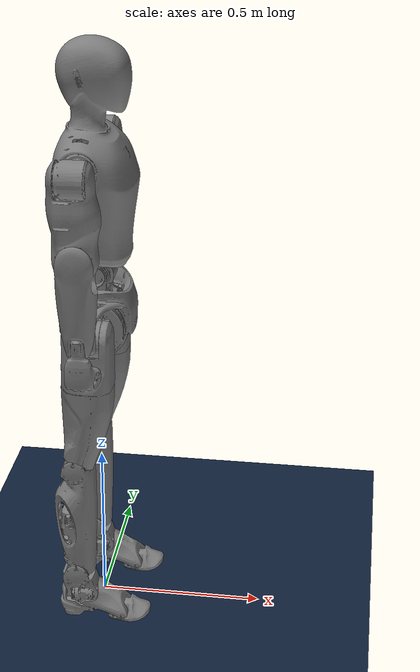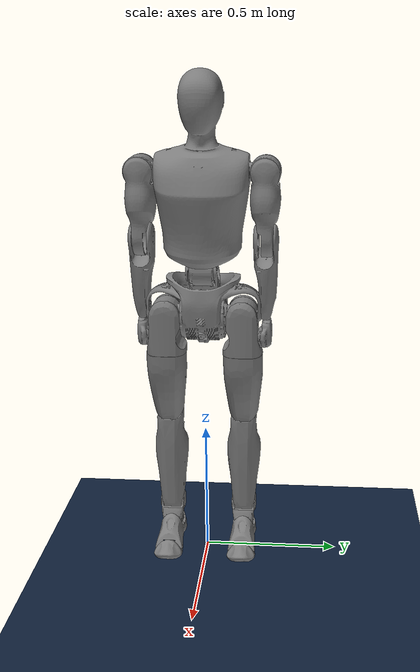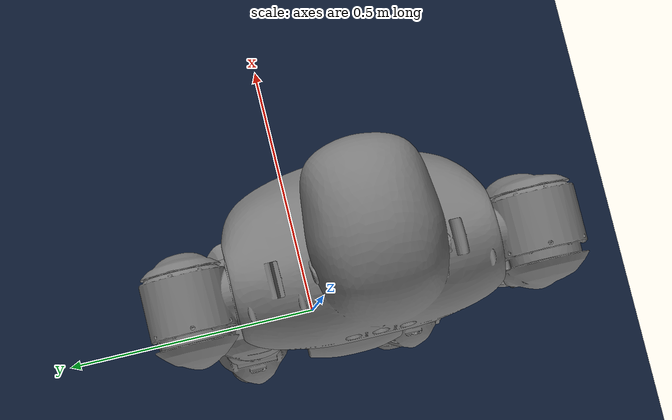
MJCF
<mujoco model="InRealV2">
  <compiler angle="radian" meshdir="../mesh/"/>

  <asset>
    <mesh name="R" content_type="model/stl" file="R.stl"/>
    <mesh name="L1" content_type="model/stl" file="L1.stl"/>
    <mesh name="L11" content_type="model/stl" file="L1.stl" scale="1 -1 1"/>
    <mesh name="L2" content_type="model/stl" file="L2.stl"/>
    <mesh name="L21" content_type="model/stl" file="L2.stl" scale="1 -1 1"/>
    <mesh name="L3" content_type="model/stl" file="L3.stl"/>
    <mesh name="L31" content_type="model/stl" file="L3.stl" scale="1 -1 1"/>
    <mesh name="L4" content_type="model/stl" file="L4.stl"/>
    <mesh name="L41" content_type="model/stl" file="L4.stl" scale="1 -1 1"/>
    <mesh name="L5" content_type="model/stl" file="L5.stl"/>
    <mesh name="L51" content_type="model/stl" file="L5.stl" scale="1 -1 1"/>
    <mesh name="L6" content_type="model/stl" file="L6.stl"/>
    <mesh name="L7" content_type="model/stl" file="L7.stl"/>
    <mesh name="L61" content_type="model/stl" file="L6.stl" scale="1 -1 1"/>
    <mesh name="L71" content_type="model/stl" file="L7.stl" scale="1 -1 1"/>
    <mesh name="W" content_type="model/stl" file="W.stl"/>
    <mesh name="C" content_type="model/stl" file="C.stl"/>
    <mesh name="A1" content_type="model/stl" file="A1.stl"/>
    <mesh name="A11" content_type="model/stl" file="A1.stl" scale="1 -1 1"/>
    <mesh name="A2" content_type="model/stl" file="A2.stl"/>
    <mesh name="A21" content_type="model/stl" file="A2.stl" scale="1 -1 1"/>
    <mesh name="A3" content_type="model/stl" file="A3.stl"/>
    <mesh name="A31" content_type="model/stl" file="A3.stl" scale="1 -1 1"/>
  </asset>

  <!-- setup scene -->
  <statistic center="0 0 1.0" extent="1.0"/>
  <visual>
    <headlight diffuse="0.6 0.6 0.6" ambient="0.4 0.4 0.4" specular="0.1 0.1 0.1"/>
    <rgba haze="0.06 0.1 0.16 1"/>
    <global offwidth="2080" offheight="1170"/>
  </visual>
  <asset>
    <texture type="skybox" builtin="gradient"
      rgb1="0.18 0.28 0.40" rgb2="0.02 0.04 0.10"
      width="512" height="512"/>
    <texture type="2d" name="groundplane" builtin="checker" mark="edge"
      rgb1="0.09 0.19 0.31" rgb2="0.03 0.06 0.15"
      markrgb="0.45 0.65 0.90" width="512" height="512"/>
    <material name="groundplane" texture="groundplane" texuniform="true"
      texrepeat="5 5" reflectance="0.25"/>
  </asset>

  <worldbody>
    <geom name="floor" size="100 100 0.01" type="box" material="groundplane" contype="1" conaffinity="1" priority="1"
      friction="1.0 0.001 0.001" condim="3" solimp="0.9 0.95 0.01" solref="0.02 0.9"/>
    <light name="main" directional="true" diffuse="0.6 0.6 0.6" specular="0.1 0.1 0.1"
      pos="0 0 10" dir="0.2 0.3 -1" castshadow="true"/>
    <light name="fill" directional="true" diffuse="0.25 0.25 0.3" specular="0.0 0.0 0.0"
      pos="0 0 5" dir="-0.2 -0.3 -1" castshadow="false"/>
    <body name="pelvis" pos="0 0 1.12">
      <inertial pos="0 0 -0.146" quat="0.999831 0.0155735 -0.00977795 0.000189897" mass="10.983" diaginertia="0.0767039 0.0675991 0.066475"/>
      <joint name="floating_base_joint" type="free"/>
      <geom type="mesh" contype="0" conaffinity="0" group="1" density="0" mesh="R"/>
      <geom size="0.05 0.175 0.05" pos="0 0 -0.035" type="box" group="3"/>
      <body name="left_hip_pitch_link" pos="0 0.1407 -0.159">
        <inertial pos="0 -0.001 0" quat="0.707107 0.707107 0 0" mass="2.425" diaginertia="0.0039 0.003173 0.00294"/>
        <joint name="left_hip_pitch_joint" pos="0 0 0" axis="0 1 0" range="-1.57 1.57" actuatorfrcrange="-587 587"/>
        <geom type="mesh" contype="0" conaffinity="0" group="1" density="0" mesh="L1"/>
        <geom size="0.055 0.035" quat="0.707035 0 0.707179 0" type="cylinder" group="3"/>
        <body name="left_hip_roll_link" pos="-0.01 0 0">
          <inertial pos="0.00137 0 -0.134" quat="0.705869 0.0418281 0.0418281 0.705869" mass="3.246" diaginertia="0.013069 0.0118616 0.00658338"/>
          <joint name="left_hip_roll_joint" pos="0 0 0" axis="1 0 0" range="-0.35 1.57" actuatorfrcrange="-336 336"/>
          <geom type="mesh" contype="0" conaffinity="0" group="1" density="0" mesh="L2"/>
          <geom size="0.05 0.04" pos="0 0 -0.1" type="cylinder" group="3"/>
          <body name="left_hip_yaw_link" pos="0 0 -0.2051">
            <inertial pos="-0.0183 -0.00116 -0.126" quat="0.991284 -0.0258429 0.107741 -0.0712767" mass="4.39" diaginertia="0.0228478 0.0227237 0.00612655"/>
            <joint name="left_hip_yaw_joint" pos="0 0 0" axis="0 0 1" range="-0.785 0.785" actuatorfrcrange="-336 336"/>
            <geom type="mesh" contype="0" conaffinity="0" group="1" density="0" mesh="L3"/>
            <geom size="0.07 0.075" pos="0 0 -0.05" type="cylinder" group="3"/>
            <body name="left_knee_link" pos="-0.043 0 -0.2226">
              <inertial pos="0.00177 -0.001 -0.255" quat="0.996528 -0.0113213 0.0159034 0.0809379" mass="4.497" diaginertia="0.041866 0.0416945 0.00542454"/>
              <joint name="left_knee_joint" pos="0 0 0" axis="0 1 0" range="-0.26 2.2" actuatorfrcrange="-338 338"/>
              <geom type="mesh" contype="0" conaffinity="0" group="1" density="0" mesh="L4"/>
              <geom size="0.05 0.125" pos="0 0 -0.15" type="cylinder" group="3"/>
              <body name="left_ankle_pitch_link" pos="0 0 -0.37">
                <inertial pos="0.0117 0.001 -0.06" quat="0.656333 -0.18572 -0.118713 0.721555" mass="0.954" diaginertia="0.00192045 0.00179804 0.00116551"/>
                <joint name="left_ankle_pitch_joint" pos="0 0 0" axis="0 1 0" range="-0.6 0.75" actuatorfrcrange="-338 338"/>
                <geom type="mesh" contype="0" conaffinity="0" group="1" density="0" mesh="L5"/>
                <geom size="0.05 0.05" quat="0.707035 0.707179 0 0" type="cylinder" group="3"/>
                <body name="left_ankle_roll_link" pos="0.014 0 -0.085">
                  <site name="left_foot" rgba="1 0 0 1" pos="0.04 0 -0.06"/>
                  <inertial pos="0.045 0 -0.022" quat="0.462195 0.535141 0.535141 0.462195" mass="0.91" diaginertia="0.00307 0.00260471 0.000965292"/>
                  <joint name="left_ankle_roll_joint" pos="0 0 0" axis="1 0 0" range="-0.26 0.26" actuatorfrcrange="-38 38"/>
                  <geom type="mesh" contype="0" conaffinity="0" group="1" density="0" mesh="L6"/>
                  <geom pos="0.131255 0 -0.0463567" quat="1 0 0 0" type="mesh" contype="0" conaffinity="0" group="1" density="0" mesh="L7"/>
                  <geom size="0.05 0.05 0.035" pos="0 0 -0.01" type="box" group="3"/>
                  <geom name="left_foot3_collision" size="0.01 0.03" pos="-0.036 0 -0.056" quat="0.707035 0 0.707179 0" type="cylinder" group="3"/>
                  <geom name="left_foot4_collision" size="0.01 0.03" pos="-0.036 0.018 -0.056" quat="0.707035 0 0.707179 0" type="cylinder" group="3"/>
                  <geom name="left_foot5_collision" size="0.01 0.025" pos="-0.036 0.036 -0.056" quat="0.707035 0 0.707179 0" type="cylinder" group="3"/>
                  <geom name="left_foot6_collision" size="0.01 0.03" pos="-0.036 -0.018 -0.056" quat="0.707035 0 0.707179 0" type="cylinder" group="3"/>
                  <geom name="left_foot7_collision" size="0.01 0.025" pos="-0.036 -0.036 -0.056" quat="0.707035 0 0.707179 0" type="cylinder" group="3"/>
                  <geom name="left_foot8_collision" size="0.01 0.055" pos="0.14 0 -0.0563567" quat="0.707035 0 0.707179 0" type="cylinder" group="3"/>
                  <geom name="left_foot9_collision" size="0.01 0.055" pos="0.14 0.02 -0.0563567" quat="0.707035 0 0.707179 0" type="cylinder" group="3"/>
                  <geom name="left_foot10_collision" size="0.01 0.055" pos="0.14 0.04 -0.0563567" quat="0.707035 0 0.707179 0" type="cylinder" group="3"/>
                  <geom name="left_foot11_collision" size="0.01 0.055" pos="0.14 -0.02 -0.0563567" quat="0.707035 0 0.707179 0" type="cylinder" group="3"/>
                  <geom name="left_foot12_collision" size="0.01 0.055" pos="0.14 -0.04 -0.0563567" quat="0.707035 0 0.707179 0" type="cylinder" group="3"/>
                  <!-- 鞋面碰撞体 -->
                  <geom size="0.010 0.065" pos="0.12 0.036 -0.028" quat="0.5396 -0.0421 0.8405 0.0270" type="cylinder" group="3"/>
                  <geom size="0.010 0.075" pos="0.12 0.020 -0.01" quat="0.5403 0 0.8415 0" type="cylinder" group="3"/>
                  <geom size="0.010 0.085" pos="0.13 0.005 -0.008" quat="0.5403 0 0.8415 0" type="cylinder" group="3"/>
                  <geom size="0.010 0.085" pos="0.13 -0.015 -0.012" quat="0.5403 0 0.8415 0" type="cylinder" group="3"/>
                  <geom size="0.010 0.065" pos="0.12 -0.03 -0.022" quat="0.5403 0 0.8415 0" type="cylinder" group="3"/>
                  <geom size="0.010 0.060" pos="0.10 -0.04 -0.03" quat="0.5396 0.0421 0.8405 -0.0270" type="cylinder" group="3"/>
                </body>
              </body>
            </body>
          </body>
        </body>
      </body>
      <body name="right_hip_pitch_link" pos="0 -0.1417 -0.159">
        <inertial pos="0 0.001 0" quat="0.707107 0.707107 0 0" mass="2.425" diaginertia="0.0039 0.003173 0.00294"/>
        <joint name="right_hip_pitch_joint" pos="0 0 0" axis="0 1 0" range="-1.57 1.57" actuatorfrcrange="-587 587"/>
        <geom type="mesh" contype="0" conaffinity="0" group="1" density="0" mesh="L11"/>
        <geom size="0.055 0.035" quat="0.707035 0 0.707179 0" type="cylinder" group="3"/>
        <body name="right_hip_roll_link" pos="-0.01 0 0">
          <inertial pos="0.00137 0 -0.134" quat="0.705869 0.0418281 0.0418281 0.705869" mass="3.246" diaginertia="0.013069 0.0118616 0.00658338"/>
          <joint name="right_hip_roll_joint" pos="0 0 0" axis="1 0 0" range="-1.57 0.35" actuatorfrcrange="-336 336"/>
          <geom type="mesh" contype="0" conaffinity="0" group="1" density="0" mesh="L21"/>
          <geom size="0.05 0.04" pos="0 0 -0.1" type="cylinder" group="3"/>
          <body name="right_hip_yaw_link" pos="0 0 -0.2051">
            <inertial pos="-0.0183 0.00116 -0.126" quat="0.991284 0.0258429 0.107741 0.0712767" mass="4.39" diaginertia="0.0228478 0.0227237 0.00612655"/>
            <joint name="right_hip_yaw_joint" pos="0 0 0" axis="0 0 1" range="-0.785 0.785" actuatorfrcrange="-336 336"/>
            <geom type="mesh" contype="0" conaffinity="0" group="1" density="0" mesh="L31"/>
            <geom size="0.07 0.075" pos="0 0 -0.05" type="cylinder" group="3"/>
            <body name="right_knee_link" pos="-0.043 0 -0.2226">
              <inertial pos="0.00177 -0.001 -0.255" quat="0.996528 0.0113213 0.0159034 -0.0809379" mass="4.497" diaginertia="0.041866 0.0416945 0.00542454"/>
              <joint name="right_knee_joint" pos="0 0 0" axis="0 1 0" range="-0.26 2.2" actuatorfrcrange="-338 338"/>
              <geom type="mesh" contype="0" conaffinity="0" group="1" density="0" mesh="L41"/>
              <geom size="0.05 0.125" pos="0 0 -0.15" type="cylinder" group="3"/>
              <body name="right_ankle_pitch_link" pos="0 0 -0.37">
                <inertial pos="0.0117 -0.001 -0.06" quat="0.721555 -0.118713 -0.18572 0.656333" mass="0.954" diaginertia="0.00192045 0.00179804 0.00116551"/>
                <joint name="right_ankle_pitch_joint" pos="0 0 0" axis="0 1 0" range="-0.6 0.75" actuatorfrcrange="-338 338"/>
                <geom type="mesh" contype="0" conaffinity="0" group="1" density="0" mesh="L51"/>
                <geom size="0.05 0.05" quat="0.707035 0.707179 0 0" type="cylinder" group="3"/>
                <body name="right_ankle_roll_link" pos="0.014 0 -0.085">
                  <site name="right_foot" rgba="1 0 0 1" pos="0.04 0 -0.06"/>
                  <inertial pos="0.045 0 -0.022" quat="0.462195 0.535141 0.535141 0.462195" mass="0.91" diaginertia="0.00307 0.00260471 0.000965292"/>
                  <joint name="right_ankle_roll_joint" pos="0 0 0" axis="1 0 0" range="-0.26 0.26" actuatorfrcrange="-38 38"/>
                  <geom type="mesh" contype="0" conaffinity="0" group="1" density="0" mesh="L61"/>
                  <geom pos="0.131255 0 -0.0463567" quat="1 0 0 0" type="mesh" contype="0" conaffinity="0" group="1" density="0" mesh="L71"/>
                  <geom size="0.05 0.05 0.035" pos="0 0 -0.01" type="box" group="3"/>
                  <geom name="right_foot3_collision" size="0.01 0.03" pos="-0.036 0 -0.056" quat="0.707035 0 0.707179 0" type="cylinder" group="3"/>
                  <geom name="right_foot4_collision" size="0.01 0.03" pos="-0.036 0.018 -0.056" quat="0.707035 0 0.707179 0" type="cylinder" group="3"/>
                  <geom name="right_foot5_collision" size="0.01 0.025" pos="-0.036 0.036 -0.056" quat="0.707035 0 0.707179 0" type="cylinder" group="3"/>
                  <geom name="right_foot6_collision" size="0.01 0.03" pos="-0.036 -0.018 -0.056" quat="0.707035 0 0.707179 0" type="cylinder" group="3"/>
                  <geom name="right_foot7_collision" size="0.01 0.025" pos="-0.036 -0.036 -0.056" quat="0.707035 0 0.707179 0" type="cylinder" group="3"/>
                  <geom name="right_foot8_collision" size="0.01 0.055" pos="0.14 0 -0.0563567" quat="0.707035 0 0.707179 0" type="cylinder" group="3"/>
                  <geom name="right_foot9_collision" size="0.01 0.055" pos="0.14 0.02 -0.0563567" quat="0.707035 0 0.707179 0" type="cylinder" group="3"/>
                  <geom name="right_foot10_collision" size="0.01 0.055" pos="0.14 0.04 -0.0563567" quat="0.707035 0 0.707179 0" type="cylinder" group="3"/>
                  <geom name="right_foot11_collision" size="0.01 0.055" pos="0.14 -0.02 -0.0563567" quat="0.707035 0 0.707179 0" type="cylinder" group="3"/>
                  <geom name="right_foot12_collision" size="0.01 0.055" pos="0.14 -0.04 -0.0563567" quat="0.707035 0 0.707179 0" type="cylinder" group="3"/>
                  <!-- 鞋面碰撞体 -->
                  <geom size="0.010 0.065" pos="0.12 0.036 -0.028" quat="0.5396 -0.0421 0.8405 0.0270" type="cylinder" group="3"/>
                  <geom size="0.010 0.075" pos="0.12 0.020 -0.01" quat="0.5403 0 0.8415 0" type="cylinder" group="3"/>
                  <geom size="0.010 0.085" pos="0.13 0.005 -0.008" quat="0.5403 0 0.8415 0" type="cylinder" group="3"/>
                  <geom size="0.010 0.085" pos="0.13 -0.015 -0.012" quat="0.5403 0 0.8415 0" type="cylinder" group="3"/>
                  <geom size="0.010 0.065" pos="0.12 -0.03 -0.022" quat="0.5403 0 0.8415 0" type="cylinder" group="3"/>
                  <geom size="0.010 0.060" pos="0.10 -0.04 -0.03" quat="0.5396 0.0421 0.8405 -0.0270" type="cylinder" group="3"/>
                </body>
              </body>
            </body>
          </body>
        </body>
      </body>
      <body name="waist_pitch_link">
        <inertial pos="0 0 0.042" quat="0.707107 0 0 0.707107" mass="4.139" diaginertia="0.015 0.014 0.00576"/>
        <joint name="waist_pitch_joint" pos="0 0 0" axis="0 1 0" range="-1.2 1.2" actuatorfrcrange="-336 336"/>
        <geom type="mesh" contype="0" conaffinity="0" group="1" density="0" mesh="W"/>
        <body name="torso_link" pos="-0.018 0 0.3515">
          <site name="IMU" pos="0 0 0" size="0.01" quat="1 0 0 0"/>
          <inertial pos="0.0082 0 0.011" quat="0.998705 -0.00836919 -0.0501464 -0.00170095" mass="14.292" diaginertia="0.362165 0.276036 0.146399"/>
          <joint name="waist_yaw_joint" pos="0 0 0" axis="0 0 1" range="-3.14 3.14" actuatorfrcrange="-336 336"/>
          <geom type="mesh" contype="0" conaffinity="0" group="1" density="0" mesh="C"/>
          <geom size="0.05 0.15 0.25" type="box" group="3"/>
          <body name="left_shoulder_pitch_link" pos="0 0.2207 0">
            <inertial pos="0 -0.0036 0" quat="0.707107 0.707107 0 0" mass="2.451" diaginertia="0.00412 0.0033 0.00285"/>
            <joint name="left_shoulder_pitch_joint" pos="0 0 0" axis="0 1 0" range="-3.14 1.57" actuatorfrcrange="-336 336"/>
            <geom type="mesh" contype="0" conaffinity="0" group="1" density="0" mesh="A1"/>
            <geom size="0.04 0.035" pos="0 0.01 0" quat="0.707035 0 0.707179 0" type="cylinder" group="3"/>
            <body name="left_shoulder_roll_link">
              <inertial pos="-0.0012 -0.0025 -0.192" quat="0.708438 -0.0045166 -0.0185531 0.705515" mass="2.526" diaginertia="0.0195909 0.0174137 0.00458043"/>
              <joint name="left_shoulder_roll_joint" pos="0 0 0" axis="1 0 0" range="-0.13 1.57" actuatorfrcrange="-336 336"/>
              <geom type="mesh" contype="0" conaffinity="0" group="1" density="0" mesh="A2"/>
              <geom size="0.05 0.1" pos="0 0.02 -0.15" type="cylinder" group="3"/>
              <body name="left_elbow_link" pos="0 0 -0.2385">
                <inertial pos="-0.0014 0.00597 -0.134" quat="0.708788 -0.00427982 -0.0143089 0.705263" mass="1.679" diaginertia="0.0127601 0.0120067 0.00227817"/>
                <joint name="left_elbow_joint" pos="0 0 0" axis="0 1 0" range="-1.76 0" actuatorfrcrange="-136 136"/>
                <geom type="mesh" contype="0" conaffinity="0" group="1" density="0" mesh="A3"/>
                <geom size="0.02 0.09" pos="0 0.03 -0.15" type="cylinder" group="3"/>
              </body>
            </body>
          </body>
          <body name="right_shoulder_pitch_link" pos="0 -0.2207 0">
            <inertial pos="0 0.0036 0" quat="0.707107 0.707107 0 0" mass="2.451" diaginertia="0.00412 0.0033 0.00285"/>
            <joint name="right_shoulder_pitch_joint" pos="0 0 0" axis="0 1 0" range="-3.14 1.57" actuatorfrcrange="-336 336"/>
            <geom type="mesh" contype="0" conaffinity="0" group="1" density="0" mesh="A11"/>
            <geom size="0.04 0.035" pos="0 -0.01 0" quat="0.707035 0 0.707179 0" type="cylinder" group="3"/>
            <body name="right_shoulder_roll_link">
              <inertial pos="-0.0012 0.0025 -0.192" quat="0.705515 -0.0185531 -0.0045166 0.708438" mass="2.526" diaginertia="0.0195909 0.0174137 0.00458043"/>
              <joint name="right_shoulder_roll_joint" pos="0 0 0" axis="1 0 0" range="-1.57 0.13" actuatorfrcrange="-336 336"/>
              <geom type="mesh" contype="0" conaffinity="0" group="1" density="0" mesh="A21"/>
              <geom size="0.05 0.1" pos="0 -0.02 -0.15" type="cylinder" group="3"/>
              <body name="right_elbow_link" pos="0 0 -0.2385">
                <inertial pos="-0.0014 -0.00597 -0.134" quat="0.705263 -0.0143089 -0.00427982 0.708788" mass="1.679" diaginertia="0.0127601 0.0120067 0.00227817"/>
                <joint name="right_elbow_joint" pos="0 0 0" axis="0 1 0" range="-1.76 0" actuatorfrcrange="-136 136"/>
                <geom type="mesh" contype="0" conaffinity="0" group="1" density="0" mesh="A31"/>
                <geom size="0.02 0.09" pos="0 -0.03 -0.15" type="cylinder" group="3"/>
              </body>
            </body>
          </body>
          <body name="battery" pos="0.033 0 -0.14">
            <inertial pos="0 0 0" mass="7.5" diaginertia="0.0365625 0.0203906 0.0389531"/>
            <geom size="0.0675 0.105 0.06" type="box" contype="0" conaffinity="0" group="1" density="0"/>
          </body>
        </body>
      </body>
    </body>
  </worldbody>

  <sensor>
    <accelerometer name="BodyAcc" site="IMU" noise="0.1"/>
    <gyro name="BodyGyro" site="IMU" noise="0.001"/>
    <subtreeangmom name="root_angmom" body="torso_link"/>
  </sensor>
</mujoco>
